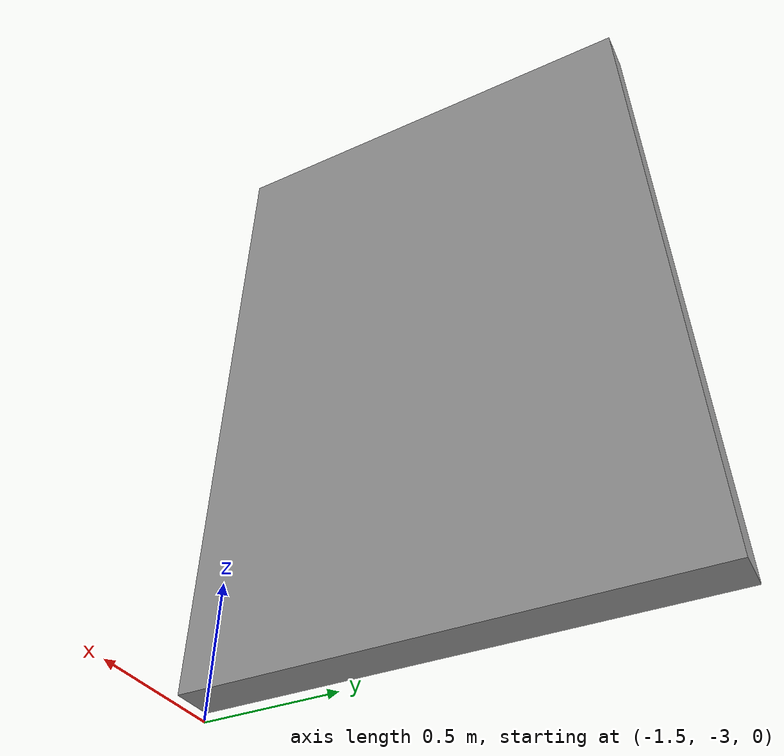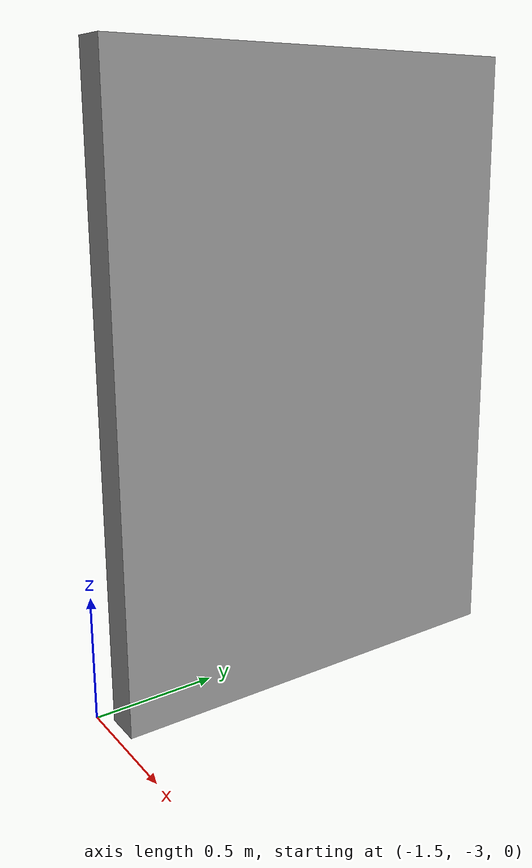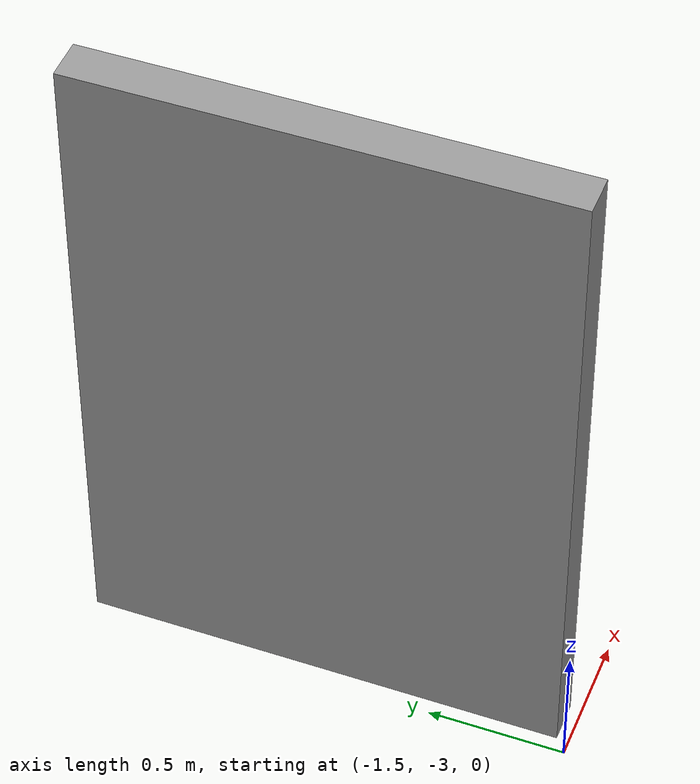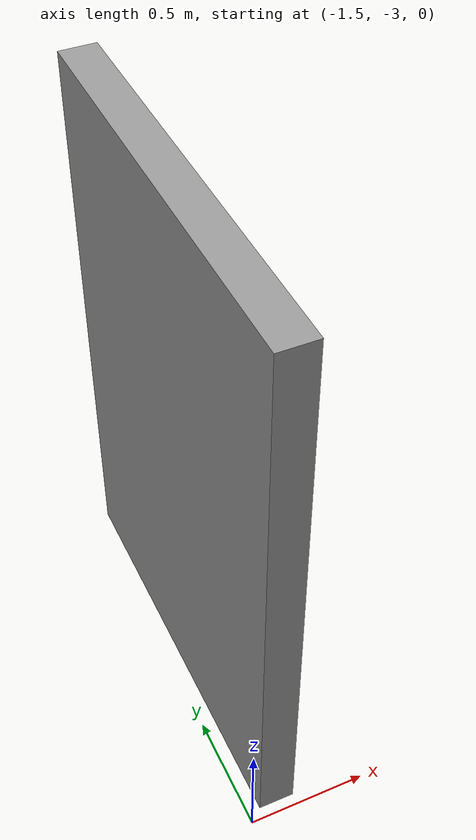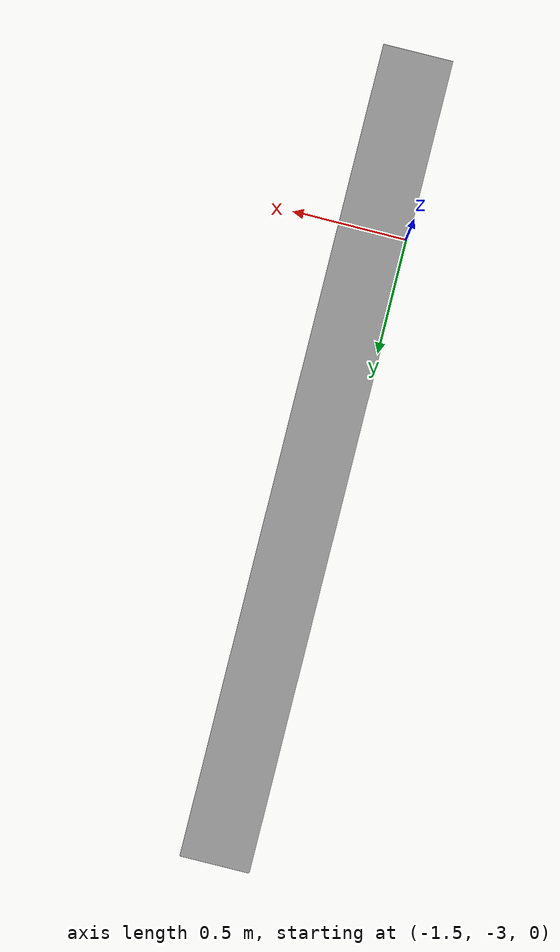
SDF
<?xml version='1.0'?>
<sdf version='1.7'>
  <model name='Test'>
    <pose>-0.7225 -1.4775 0 0 -0 0</pose>
    <link name='Wall_0'>
      <collision name='Wall_0_Collision'>
        <geometry>
          <box>
            <size>1.75 0.15 2.5</size>
          </box>
        </geometry>
        <pose>0 0 1.25 0 -0 0</pose>
      </collision>
      <visual name='Wall_0_Visual'>
        <pose>0 0 1.25 0 -0 0</pose>
        <geometry>
          <box>
            <size>1.75 0.15 2.5</size>
          </box>
        </geometry>
        <material>
          <script>
            <uri>file://media/materials/scripts/gazebo.material</uri>
            <name>Gazebo/Grey</name>
          </script>
          <ambient>1 1 1 1</ambient>
        </material>
        <meta>
          <layer>0</layer>
        </meta>
      </visual>
      <pose>-0.6475 -0.6025 0 0 -0 -1.5708</pose>
    </link>
    <static>1</static>
  </model>
</sdf>
